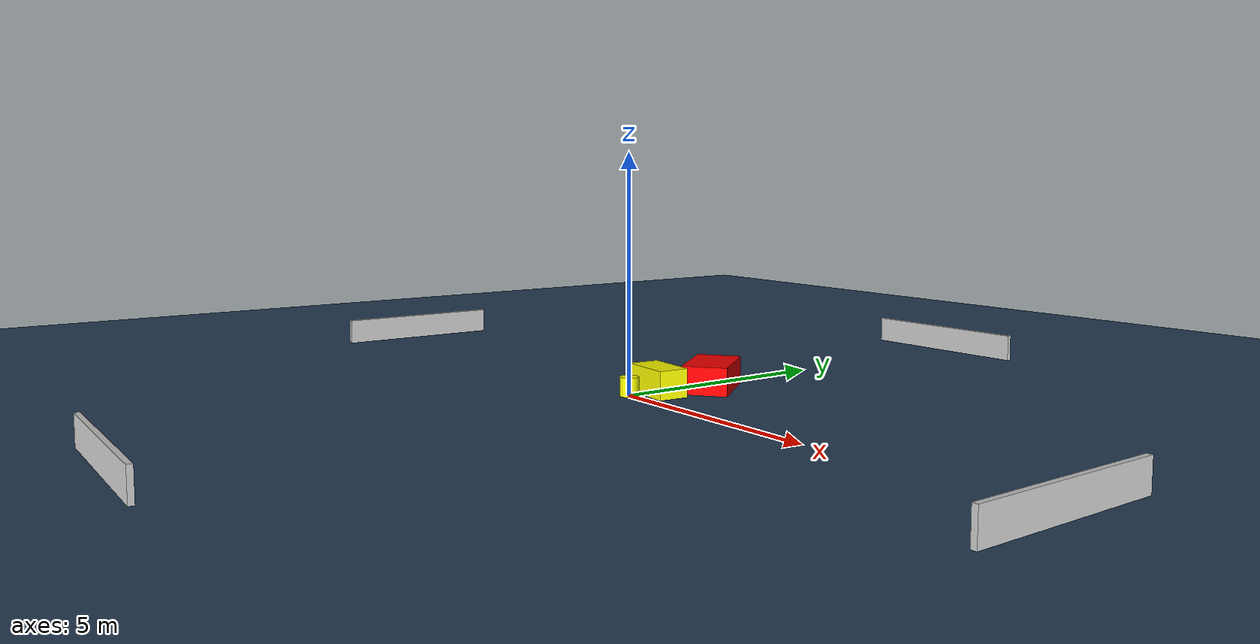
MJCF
<?xml version="1.0" ?>
<mujoco model="generated_environment">
  <option timestep="0.01" integrator="RK4" cone="elliptic"/>
  <default>
    <geom density="1"/>
  </default>
  <asset>
    <texture builtin="gradient" height="3072" name="skybox" rgb1="0.3 0.5 0.7" rgb2="0 0 0" type="skybox" width="512"/>
    <texture builtin="checker" height="300" name="groundplane" rgb1="0.2 0.3 0.4" rgb2="0.1 0.2 0.3" type="2d" width="300"/>
    <material name="groundplane" reflectance="0.2" texrepeat="5 5" texture="groundplane"/>
  </asset>
  <worldbody>
    <light dir="0 0 -1" directional="true" pos="0 0 1.5"/>
    <geom condim="3" friction="0.5 0.005 0.001" material="groundplane" name="floor" pos="0 0 0" size="0 0 0.05" type="plane"/>
    <body name="walls">
      <geom name="wall_1" condim="4" pos="-10.0 0.0 0.3" rgba="0.800000011920929 0.800000011920929 0.800000011920929 1.0" size="0.05 2.0 0.3" type="box"/>
      <geom name="wall_2" condim="4" pos="10.0 0.0 0.3" rgba="0.800000011920929 0.800000011920929 0.800000011920929 1.0" size="0.05 2.0 0.3" type="box"/>
      <geom name="wall_3" condim="4" pos="0.0 -10.0 0.3" rgba="0.800000011920929 0.800000011920929 0.800000011920929 1.0" size="2.0 0.05 0.3" type="box"/>
      <geom name="wall_4" condim="4" pos="0.0 10.0 0.3" rgba="0.800000011920929 0.800000011920929 0.800000011920929 1.0" size="2.0 0.05 0.3" type="box"/>
    </body>
    <body name="robot">
      <joint name="joint_x" type="slide" pos="0 0 0" axis="1 0 0"/>
      <joint name="joint_y" type="slide" pos="0 0 0" axis="0 1 0"/>
      <geom name="robot" type="cylinder" pos="0.0 0.0 0.2" size="0.2 0.2 0.0" mass="5.0" friction="1.0 0.005 0.0001" condim="4" rgba="1.0 1.0 0.0 1.0"/>
    </body>
    <body name="obstacle_1_movable">
      <geom name="obstacle_1_movable" condim="4" pos="0.2307749968591143 0.580235324291887 0.3" euler="0 0 355.7147920351808" friction="0.0 0.005 0.001" rgba="1.0 1.0 0.0 1.0" size="0.5728148986165811 0.3340626874439323 0.3" type="box" mass="0.1"/>
      <joint type="free"/>
    </body>
    <body name="obstacle_2_static">
      <geom name="obstacle_2_static" condim="4" pos="0.44471543288021265 1.8460334990849172 0.3" euler="0 0 127.82296871746274" friction="0.0 0.005 0.001" rgba="1.0 0.0 0.0 1.0" size="0.7641336478622671 0.4778146963603504 0.3" type="box"/>
    </body>
  </worldbody>
  <actuator>
    <motor name="actuator_x" joint="joint_x" gear="1" ctrlrange="-1 1"/>
    <motor name="actuator_y" joint="joint_y" gear="1" ctrlrange="-1 1"/>
  </actuator>
</mujoco>
